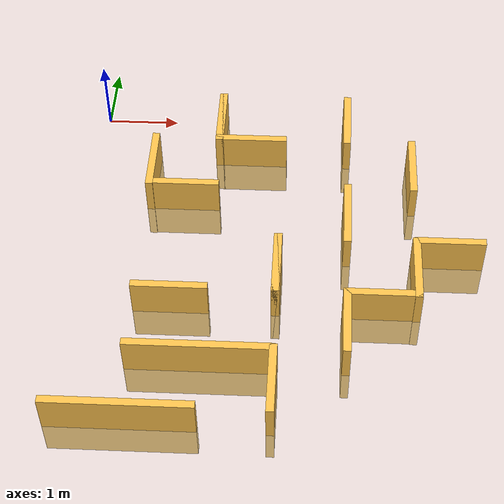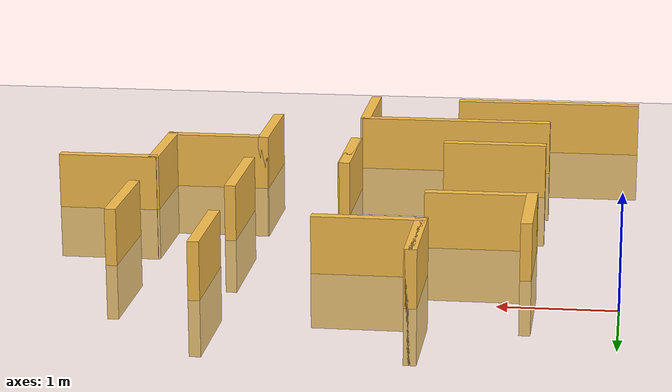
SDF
<sdf version="1.7">
 <world name="default">
  <model name="ground_plane">
   <static>1</static>
   <link name="link">
    <collision name="collision">
     <geometry><plane><normal>0 0 1</normal><size>100 100</size></plane></geometry>
     <surface><friction><ode><mu>100</mu><mu2>50</mu2></ode></friction></surface>
    </collision>
    <visual name="visual">
     <cast_shadows>0</cast_shadows>
     <geometry><plane><normal>0 0 1</normal><size>100 100</size></plane></geometry>
     <material>
      <script><uri>file://media/materials/scripts/gazebo.material</uri><name>Gazebo/Grey</name></script>
     </material>
    </visual>
   </link>
  </model>
  <model name="maze_train">
   <link name="Wall_19">
    <visual name="Wall_19_Visual">
     <pose>0.8 1.245 0 0 -0 0</pose>
     <geometry><box><size>0.1 0.99 1</size></box></geometry>
     <material>
      <script><uri>file://media/materials/scripts/gazebo.material</uri><name>Gazebo/Grey</name></script>
      <ambient>1 0.764706 0.305882 1</ambient>
      <diffuse>0.7 0.7 0.7 1</diffuse>
      <specular>0.01 0.01 0.01 1</specular>
      <emissive>0 0 0 1</emissive>
      <shader type="pixel"/>
     </material>
    </visual>
    <collision name="Wall_19_Collision">
     <pose>0.8 1.245 0 0 -0 0</pose>
     <geometry><box><size>0.1 0.99 1</size></box></geometry>
     <surface>
      <friction><ode><mu>1</mu><mu2>1</mu2><fdir1>0 0 0</fdir1><slip1>0</slip1><slip2>0</slip2></ode></friction>
      <bounce><restitution_coefficient>0</restitution_coefficient><threshold>1e+06</threshold></bounce>
      <contact>
       <collide_without_contact>0</collide_without_contact>
       <collide_without_contact_bitmask>1</collide_without_contact_bitmask>
       <collide_bitmask>1</collide_bitmask>
       <ode>
        <soft_cfm>0</soft_cfm>
        <soft_erp>0.2</soft_erp>
        <kp>1e+13</kp>
        <kd>1</kd>
        <max_vel>0.01</max_vel>
        <min_depth>0</min_depth>
       </ode>
       <bullet>
        <split_impulse>1</split_impulse>
        <split_impulse_penetration_threshold>-0.01</split_impulse_penetration_threshold>
        <soft_cfm>0</soft_cfm>
        <soft_erp>0.2</soft_erp>
        <kp>1e+13</kp>
        <kd>1</kd>
       </bullet>
      </contact>
     </surface>
    </collision>
   </link>
   <link name="Wall_20">
    <visual name="Wall_20_Visual">
     <pose>2.59 3.055 0 0 -0 0</pose>
     <geometry><box><size>0.1 0.97 1</size></box></geometry>
     <material>
      <script><uri>file://media/materials/scripts/gazebo.material</uri><name>Gazebo/Grey</name></script>
      <ambient>1 0.764706 0.305882 1</ambient>
      <diffuse>0.7 0.7 0.7 1</diffuse>
      <specular>0.01 0.01 0.01 1</specular>
      <emissive>0 0 0 1</emissive>
      <shader type="pixel"/>
     </material>
    </visual>
    <collision name="Wall_20_Collision">
     <pose>2.59 3.055 0 0 -0 0</pose>
     <geometry><box><size>0.1 0.97 1</size></box></geometry>
     <surface>
      <friction><ode><mu>1</mu><mu2>1</mu2><fdir1>0 0 0</fdir1><slip1>0</slip1><slip2>0</slip2></ode></friction>
      <bounce><restitution_coefficient>0</restitution_coefficient><threshold>1e+06</threshold></bounce>
      <contact>
       <collide_without_contact>0</collide_without_contact>
       <collide_without_contact_bitmask>1</collide_without_contact_bitmask>
       <collide_bitmask>1</collide_bitmask>
       <ode>
        <soft_cfm>0</soft_cfm>
        <soft_erp>0.2</soft_erp>
        <kp>1e+13</kp>
        <kd>1</kd>
        <max_vel>0.01</max_vel>
        <min_depth>0</min_depth>
       </ode>
       <bullet>
        <split_impulse>1</split_impulse>
        <split_impulse_penetration_threshold>-0.01</split_impulse_penetration_threshold>
        <soft_cfm>0</soft_cfm>
        <soft_erp>0.2</soft_erp>
        <kp>1e+13</kp>
        <kd>1</kd>
       </bullet>
      </contact>
     </surface>
    </collision>
   </link>
   <link name="Wall_21">
    <visual name="Wall_21_Visual">
     <pose>4.39 1.24 0 0 -0 0</pose>
     <geometry><box><size>0.1 0.96 1</size></box></geometry>
     <material>
      <script><uri>file://media/materials/scripts/gazebo.material</uri><name>Gazebo/Grey</name></script>
      <ambient>1 0.764706 0.305882 1</ambient>
      <diffuse>0.7 0.7 0.7 1</diffuse>
      <specular>0.01 0.01 0.01 1</specular>
      <emissive>0 0 0 1</emissive>
      <shader type="pixel"/>
     </material>
    </visual>
    <collision name="Wall_21_Collision">
     <pose>4.39 1.24 0 0 -0 0</pose>
     <geometry><box><size>0.1 0.96 1</size></box></geometry>
     <surface>
      <friction><ode><mu>1</mu><mu2>1</mu2><fdir1>0 0 0</fdir1><slip1>0</slip1><slip2>0</slip2></ode></friction>
      <bounce><restitution_coefficient>0</restitution_coefficient><threshold>1e+06</threshold></bounce>
      <contact>
       <collide_without_contact>0</collide_without_contact>
       <collide_without_contact_bitmask>1</collide_without_contact_bitmask>
       <collide_bitmask>1</collide_bitmask>
       <ode>
        <soft_cfm>0</soft_cfm>
        <soft_erp>0.2</soft_erp>
        <kp>1e+13</kp>
        <kd>1</kd>
        <max_vel>0.01</max_vel>
        <min_depth>0</min_depth>
       </ode>
       <bullet>
        <split_impulse>1</split_impulse>
        <split_impulse_penetration_threshold>-0.01</split_impulse_penetration_threshold>
        <soft_cfm>0</soft_cfm>
        <soft_erp>0.2</soft_erp>
        <kp>1e+13</kp>
        <kd>1</kd>
       </bullet>
      </contact>
     </surface>
    </collision>
   </link>
   <link name="Wall_22">
    <visual name="Wall_22_Visual">
     <pose>3.95 3.5 0 0 -0 0</pose>
     <geometry><box><size>0.98 0.1 1</size></box></geometry>
     <material>
      <script><uri>file://media/materials/scripts/gazebo.material</uri><name>Gazebo/Grey</name></script>
      <ambient>1 0.764706 0.305882 1</ambient>
      <diffuse>0.7 0.7 0.7 1</diffuse>
      <specular>0.01 0.01 0.01 1</specular>
      <emissive>0 0 0 1</emissive>
      <shader type="pixel"/>
     </material>
    </visual>
    <collision name="Wall_22_Collision">
     <pose>3.95 3.5 0 0 -0 0</pose>
     <geometry><box><size>0.98 0.1 1</size></box></geometry>
     <surface>
      <friction><ode><mu>1</mu><mu2>1</mu2><fdir1>0 0 0</fdir1><slip1>0</slip1><slip2>0</slip2></ode></friction>
      <bounce><restitution_coefficient>0</restitution_coefficient><threshold>1e+06</threshold></bounce>
      <contact>
       <collide_without_contact>0</collide_without_contact>
       <collide_without_contact_bitmask>1</collide_without_contact_bitmask>
       <collide_bitmask>1</collide_bitmask>
       <ode>
        <soft_cfm>0</soft_cfm>
        <soft_erp>0.2</soft_erp>
        <kp>1e+13</kp>
        <kd>1</kd>
        <max_vel>0.01</max_vel>
        <min_depth>0</min_depth>
       </ode>
       <bullet>
        <split_impulse>1</split_impulse>
        <split_impulse_penetration_threshold>-0.01</split_impulse_penetration_threshold>
        <soft_cfm>0</soft_cfm>
        <soft_erp>0.2</soft_erp>
        <kp>1e+13</kp>
        <kd>1</kd>
       </bullet>
      </contact>
     </surface>
    </collision>
   </link>
   <link name="Wall_23">
    <visual name="Wall_23_Visual">
     <pose>1.25 3.49 0 0 -0 0</pose>
     <geometry><box><size>0.98 0.1 1</size></box></geometry>
     <material>
      <script><uri>file://media/materials/scripts/gazebo.material</uri><name>Gazebo/Grey</name></script>
      <ambient>1 0.764706 0.305882 1</ambient>
      <diffuse>0.7 0.7 0.7 1</diffuse>
      <specular>0.01 0.01 0.01 1</specular>
      <emissive>0 0 0 1</emissive>
      <shader type="pixel"/>
     </material>
    </visual>
    <collision name="Wall_23_Collision">
     <pose>1.25 3.49 0 0 -0 0</pose>
     <geometry><box><size>0.98 0.1 1</size></box></geometry>
     <surface>
      <friction><ode><mu>1</mu><mu2>1</mu2><fdir1>0 0 0</fdir1><slip1>0</slip1><slip2>0</slip2></ode></friction>
      <bounce><restitution_coefficient>0</restitution_coefficient><threshold>1e+06</threshold></bounce>
      <contact>
       <collide_without_contact>0</collide_without_contact>
       <collide_without_contact_bitmask>1</collide_without_contact_bitmask>
       <collide_bitmask>1</collide_bitmask>
       <ode>
        <soft_cfm>0</soft_cfm>
        <soft_erp>0.2</soft_erp>
        <kp>1e+13</kp>
        <kd>1</kd>
        <max_vel>0.01</max_vel>
        <min_depth>0</min_depth>
       </ode>
       <bullet>
        <split_impulse>1</split_impulse>
        <split_impulse_penetration_threshold>-0.01</split_impulse_penetration_threshold>
        <soft_cfm>0</soft_cfm>
        <soft_erp>0.2</soft_erp>
        <kp>1e+13</kp>
        <kd>1</kd>
       </bullet>
      </contact>
     </surface>
    </collision>
   </link>
   <link name="Wall_24">
    <visual name="Wall_24_Visual">
     <pose>2.145 0.79 0 0 -0 0</pose>
     <geometry><box><size>0.99 0.1 1</size></box></geometry>
     <material>
      <script><uri>file://media/materials/scripts/gazebo.material</uri><name>Gazebo/Grey</name></script>
      <ambient>1 0.764706 0.305882 1</ambient>
      <diffuse>0.7 0.7 0.7 1</diffuse>
      <specular>0.01 0.01 0.01 1</specular>
      <emissive>0 0 0 1</emissive>
      <shader type="pixel"/>
     </material>
    </visual>
    <collision name="Wall_24_Collision">
     <pose>2.145 0.79 0 0 -0 0</pose>
     <geometry><box><size>0.99 0.1 1</size></box></geometry>
     <surface>
      <friction><ode><mu>1</mu><mu2>1</mu2><fdir1>0 0 0</fdir1><slip1>0</slip1><slip2>0</slip2></ode></friction>
      <bounce><restitution_coefficient>0</restitution_coefficient><threshold>1e+06</threshold></bounce>
      <contact>
       <collide_without_contact>0</collide_without_contact>
       <collide_without_contact_bitmask>1</collide_without_contact_bitmask>
       <collide_bitmask>1</collide_bitmask>
       <ode>
        <soft_cfm>0</soft_cfm>
        <soft_erp>0.2</soft_erp>
        <kp>1e+13</kp>
        <kd>1</kd>
        <max_vel>0.01</max_vel>
        <min_depth>0</min_depth>
       </ode>
       <bullet>
        <split_impulse>1</split_impulse>
        <split_impulse_penetration_threshold>-0.01</split_impulse_penetration_threshold>
        <soft_cfm>0</soft_cfm>
        <soft_erp>0.2</soft_erp>
        <kp>1e+13</kp>
        <kd>1</kd>
       </bullet>
      </contact>
     </surface>
    </collision>
   </link>
   <link name="Wall_25">
    <visual name="Wall_25_Visual">
     <pose>2.6 3.055 0 0 -0 0</pose>
     <geometry><box><size>0.1 0.97 1</size></box></geometry>
     <material>
      <script><uri>file://media/materials/scripts/gazebo.material</uri><name>Gazebo/Grey</name></script>
      <ambient>1 0.764706 0.305882 1</ambient>
      <diffuse>0.7 0.7 0.7 1</diffuse>
      <specular>0.01 0.01 0.01 1</specular>
      <emissive>0 0 0 1</emissive>
      <shader type="pixel"/>
     </material>
    </visual>
    <collision name="Wall_25_Collision">
     <pose>2.6 3.055 0 0 -0 0</pose>
     <geometry><box><size>0.1 0.97 1</size></box></geometry>
     <surface>
      <friction><ode><mu>1</mu><mu2>1</mu2><fdir1>0 0 0</fdir1><slip1>0</slip1><slip2>0</slip2></ode></friction>
      <bounce><restitution_coefficient>0</restitution_coefficient><threshold>1e+06</threshold></bounce>
      <contact>
       <collide_without_contact>0</collide_without_contact>
       <collide_without_contact_bitmask>1</collide_without_contact_bitmask>
       <collide_bitmask>1</collide_bitmask>
       <ode>
        <soft_cfm>0</soft_cfm>
        <soft_erp>0.2</soft_erp>
        <kp>1e+13</kp>
        <kd>1</kd>
        <max_vel>0.01</max_vel>
        <min_depth>0</min_depth>
       </ode>
       <bullet>
        <split_impulse>1</split_impulse>
        <split_impulse_penetration_threshold>-0.01</split_impulse_penetration_threshold>
        <soft_cfm>0</soft_cfm>
        <soft_erp>0.2</soft_erp>
        <kp>1e+13</kp>
        <kd>1</kd>
       </bullet>
      </contact>
     </surface>
    </collision>
   </link>
   <link name="Wall_27">
    <visual name="Wall_27_Visual">
     <pose>3.5 3.94 0 0 -0 0</pose>
     <geometry><box><size>0.1 0.98 1</size></box></geometry>
     <material>
      <script><uri>file://media/materials/scripts/gazebo.material</uri><name>Gazebo/Grey</name></script>
      <ambient>1 0.764706 0.305882 1</ambient>
      <diffuse>0.7 0.7 0.7 1</diffuse>
      <specular>0.01 0.01 0.01 1</specular>
      <emissive>0 0 0 1</emissive>
      <shader type="pixel"/>
     </material>
    </visual>
    <collision name="Wall_27_Collision">
     <pose>3.5 3.94 0 0 -0 0</pose>
     <geometry><box><size>0.1 0.98 1</size></box></geometry>
     <surface>
      <friction><ode><mu>1</mu><mu2>1</mu2><fdir1>0 0 0</fdir1><slip1>0</slip1><slip2>0</slip2></ode></friction>
      <bounce><restitution_coefficient>0</restitution_coefficient><threshold>1e+06</threshold></bounce>
      <contact>
       <collide_without_contact>0</collide_without_contact>
       <collide_without_contact_bitmask>1</collide_without_contact_bitmask>
       <collide_bitmask>1</collide_bitmask>
       <ode>
        <soft_cfm>0</soft_cfm>
        <soft_erp>0.2</soft_erp>
        <kp>1e+13</kp>
        <kd>1</kd>
        <max_vel>0.01</max_vel>
        <min_depth>0</min_depth>
       </ode>
       <bullet>
        <split_impulse>1</split_impulse>
        <split_impulse_penetration_threshold>-0.01</split_impulse_penetration_threshold>
        <soft_cfm>0</soft_cfm>
        <soft_erp>0.2</soft_erp>
        <kp>1e+13</kp>
        <kd>1</kd>
       </bullet>
      </contact>
     </surface>
    </collision>
   </link>
   <link name="Wall_28">
    <visual name="Wall_28_Visual">
     <pose>1.7 4.4 0 0 -0 0</pose>
     <geometry><box><size>1.88 0.1 1</size></box></geometry>
     <material>
      <script><uri>file://media/materials/scripts/gazebo.material</uri><name>Gazebo/Grey</name></script>
      <ambient>1 0.764706 0.305882 1</ambient>
      <diffuse>0.7 0.7 0.7 1</diffuse>
      <specular>0.01 0.01 0.01 1</specular>
      <emissive>0 0 0 1</emissive>
      <shader type="pixel"/>
     </material>
    </visual>
    <collision name="Wall_28_Collision">
     <pose>1.7 4.4 0 0 -0 0</pose>
     <geometry><box><size>1.88 0.1 1</size></box></geometry>
     <surface>
      <friction><ode><mu>1</mu><mu2>1</mu2><fdir1>0 0 0</fdir1><slip1>0</slip1><slip2>0</slip2></ode></friction>
      <bounce><restitution_coefficient>0</restitution_coefficient><threshold>1e+06</threshold></bounce>
      <contact>
       <collide_without_contact>0</collide_without_contact>
       <collide_without_contact_bitmask>1</collide_without_contact_bitmask>
       <collide_bitmask>1</collide_bitmask>
       <ode>
        <soft_cfm>0</soft_cfm>
        <soft_erp>0.2</soft_erp>
        <kp>1e+13</kp>
        <kd>1</kd>
        <max_vel>0.01</max_vel>
        <min_depth>0</min_depth>
       </ode>
       <bullet>
        <split_impulse>1</split_impulse>
        <split_impulse_penetration_threshold>-0.01</split_impulse_penetration_threshold>
        <soft_cfm>0</soft_cfm>
        <soft_erp>0.2</soft_erp>
        <kp>1e+13</kp>
        <kd>1</kd>
       </bullet>
      </contact>
     </surface>
    </collision>
   </link>
   <link name="Wall_29">
    <visual name="Wall_29_Visual">
     <pose>3.49 0.36 0 0 -0 0</pose>
     <geometry><box><size>0.1 0.96 1</size></box></geometry>
     <material>
      <script><uri>file://media/materials/scripts/gazebo.material</uri><name>Gazebo/Grey</name></script>
      <ambient>1 0.764706 0.305882 1</ambient>
      <diffuse>0.7 0.7 0.7 1</diffuse>
      <specular>0.01 0.01 0.01 1</specular>
      <emissive>0 0 0 1</emissive>
      <shader type="pixel"/>
     </material>
    </visual>
    <collision name="Wall_29_Collision">
     <pose>3.49 0.36 0 0 -0 0</pose>
     <geometry><box><size>0.1 0.96 1</size></box></geometry>
     <surface>
      <friction><ode><mu>1</mu><mu2>1</mu2><fdir1>0 0 0</fdir1><slip1>0</slip1><slip2>0</slip2></ode></friction>
      <bounce><restitution_coefficient>0</restitution_coefficient><threshold>1e+06</threshold></bounce>
      <contact>
       <collide_without_contact>0</collide_without_contact>
       <collide_without_contact_bitmask>1</collide_without_contact_bitmask>
       <collide_bitmask>1</collide_bitmask>
       <ode>
        <soft_cfm>0</soft_cfm>
        <soft_erp>0.2</soft_erp>
        <kp>1e+13</kp>
        <kd>1</kd>
        <max_vel>0.01</max_vel>
        <min_depth>0</min_depth>
       </ode>
       <bullet>
        <split_impulse>1</split_impulse>
        <split_impulse_penetration_threshold>-0.01</split_impulse_penetration_threshold>
        <soft_cfm>0</soft_cfm>
        <soft_erp>0.2</soft_erp>
        <kp>1e+13</kp>
        <kd>1</kd>
       </bullet>
      </contact>
     </surface>
    </collision>
   </link>
   <link name="Wall_34">
    <visual name="Wall_34_Visual">
     <pose>1.7 0.36 0 0 -0 0</pose>
     <geometry><box><size>0.1 0.96 1</size></box></geometry>
     <material>
      <script><uri>file://media/materials/scripts/gazebo.material</uri><name>Gazebo/Grey</name></script>
      <ambient>1 0.764706 0.305882 1</ambient>
      <diffuse>0.7 0.7 0.7 1</diffuse>
      <specular>0.01 0.01 0.01 1</specular>
      <emissive>0 0 0 1</emissive>
      <shader type="pixel"/>
     </material>
    </visual>
    <collision name="Wall_34_Collision">
     <pose>1.7 0.36 0 0 -0 0</pose>
     <geometry><box><size>0.1 0.96 1</size></box></geometry>
     <surface>
      <friction><ode><mu>1</mu><mu2>1</mu2><fdir1>0 0 0</fdir1><slip1>0</slip1><slip2>0</slip2></ode></friction>
      <bounce><restitution_coefficient>0</restitution_coefficient><threshold>1e+06</threshold></bounce>
      <contact>
       <collide_without_contact>0</collide_without_contact>
       <collide_without_contact_bitmask>1</collide_without_contact_bitmask>
       <collide_bitmask>1</collide_bitmask>
       <ode>
        <soft_cfm>0</soft_cfm>
        <soft_erp>0.2</soft_erp>
        <kp>1e+13</kp>
        <kd>1</kd>
        <max_vel>0.01</max_vel>
        <min_depth>0</min_depth>
       </ode>
       <bullet>
        <split_impulse>1</split_impulse>
        <split_impulse_penetration_threshold>-0.01</split_impulse_penetration_threshold>
        <soft_cfm>0</soft_cfm>
        <soft_erp>0.2</soft_erp>
        <kp>1e+13</kp>
        <kd>1</kd>
       </bullet>
      </contact>
     </surface>
    </collision>
   </link>
   <link name="Wall_36">
    <visual name="Wall_36_Visual">
     <pose>1.69 0.36 0 0 -0 0</pose>
     <geometry><box><size>0.1 0.96 1</size></box></geometry>
     <material>
      <script><uri>file://media/materials/scripts/gazebo.material</uri><name>Gazebo/Grey</name></script>
      <ambient>1 0.764706 0.305882 1</ambient>
      <diffuse>0.7 0.7 0.7 1</diffuse>
      <specular>0.01 0.01 0.01 1</specular>
      <emissive>0 0 0 1</emissive>
      <shader type="pixel"/>
     </material>
    </visual>
    <collision name="Wall_36_Collision">
     <pose>1.69 0.36 0 0 -0 0</pose>
     <geometry><box><size>0.1 0.96 1</size></box></geometry>
     <surface>
      <friction><ode><mu>1</mu><mu2>1</mu2><fdir1>0 0 0</fdir1><slip1>0</slip1><slip2>0</slip2></ode></friction>
      <bounce><restitution_coefficient>0</restitution_coefficient><threshold>1e+06</threshold></bounce>
      <contact>
       <collide_without_contact>0</collide_without_contact>
       <collide_without_contact_bitmask>1</collide_without_contact_bitmask>
       <collide_bitmask>1</collide_bitmask>
       <ode>
        <soft_cfm>0</soft_cfm>
        <soft_erp>0.2</soft_erp>
        <kp>1e+13</kp>
        <kd>1</kd>
        <max_vel>0.01</max_vel>
        <min_depth>0</min_depth>
       </ode>
       <bullet>
        <split_impulse>1</split_impulse>
        <split_impulse_penetration_threshold>-0.01</split_impulse_penetration_threshold>
        <soft_cfm>0</soft_cfm>
        <soft_erp>0.2</soft_erp>
        <kp>1e+13</kp>
        <kd>1</kd>
       </bullet>
      </contact>
     </surface>
    </collision>
   </link>
   <link name="Wall_37">
    <visual name="Wall_37_Visual">
     <pose>0.815 5.27 0 0 -0 0</pose>
     <geometry><box><size>1.85 0.1 1</size></box></geometry>
     <material>
      <script><uri>file://media/materials/scripts/gazebo.material</uri><name>Gazebo/Grey</name></script>
      <ambient>1 0.764706 0.305882 1</ambient>
      <diffuse>0.7 0.7 0.7 1</diffuse>
      <specular>0.01 0.01 0.01 1</specular>
      <emissive>0 0 0 1</emissive>
      <shader type="pixel"/>
     </material>
    </visual>
    <collision name="Wall_37_Collision">
     <pose>0.815 5.27 0 0 -0 0</pose>
     <geometry><box><size>1.85 0.1 1</size></box></geometry>
     <surface>
      <friction><ode><mu>1</mu><mu2>1</mu2><fdir1>0 0 0</fdir1><slip1>0</slip1><slip2>0</slip2></ode></friction>
      <bounce><restitution_coefficient>0</restitution_coefficient><threshold>1e+06</threshold></bounce>
      <contact>
       <collide_without_contact>0</collide_without_contact>
       <collide_without_contact_bitmask>1</collide_without_contact_bitmask>
       <collide_bitmask>1</collide_bitmask>
       <ode>
        <soft_cfm>0</soft_cfm>
        <soft_erp>0.2</soft_erp>
        <kp>1e+13</kp>
        <kd>1</kd>
        <max_vel>0.01</max_vel>
        <min_depth>0</min_depth>
       </ode>
       <bullet>
        <split_impulse>1</split_impulse>
        <split_impulse_penetration_threshold>-0.01</split_impulse_penetration_threshold>
        <soft_cfm>0</soft_cfm>
        <soft_erp>0.2</soft_erp>
        <kp>1e+13</kp>
        <kd>1</kd>
       </bullet>
      </contact>
     </surface>
    </collision>
   </link>
   <link name="Wall_38">
    <visual name="Wall_38_Visual">
     <pose>2.61 4.845 0 0 -0 0</pose>
     <geometry><box><size>0.1 0.97 1</size></box></geometry>
     <material>
      <script><uri>file://media/materials/scripts/gazebo.material</uri><name>Gazebo/Grey</name></script>
      <ambient>1 0.764706 0.305882 1</ambient>
      <diffuse>0.7 0.7 0.7 1</diffuse>
      <specular>0.01 0.01 0.01 1</specular>
      <emissive>0 0 0 1</emissive>
      <shader type="pixel"/>
     </material>
    </visual>
    <collision name="Wall_38_Collision">
     <pose>2.61 4.845 0 0 -0 0</pose>
     <geometry><box><size>0.1 0.97 1</size></box></geometry>
     <surface>
      <friction><ode><mu>1</mu><mu2>1</mu2><fdir1>0 0 0</fdir1><slip1>0</slip1><slip2>0</slip2></ode></friction>
      <bounce><restitution_coefficient>0</restitution_coefficient><threshold>1e+06</threshold></bounce>
      <contact>
       <collide_without_contact>0</collide_without_contact>
       <collide_without_contact_bitmask>1</collide_without_contact_bitmask>
       <collide_bitmask>1</collide_bitmask>
       <ode>
        <soft_cfm>0</soft_cfm>
        <soft_erp>0.2</soft_erp>
        <kp>1e+13</kp>
        <kd>1</kd>
        <max_vel>0.01</max_vel>
        <min_depth>0</min_depth>
       </ode>
       <bullet>
        <split_impulse>1</split_impulse>
        <split_impulse_penetration_threshold>-0.01</split_impulse_penetration_threshold>
        <soft_cfm>0</soft_cfm>
        <soft_erp>0.2</soft_erp>
        <kp>1e+13</kp>
        <kd>1</kd>
       </bullet>
      </contact>
     </surface>
    </collision>
   </link>
   <link name="Wall_39">
    <visual name="Wall_39_Visual">
     <pose>4.4 3.065 0 0 -0 0</pose>
     <geometry><box><size>0.1 0.99 1</size></box></geometry>
     <material>
      <script><uri>file://media/materials/scripts/gazebo.material</uri><name>Gazebo/Grey</name></script>
      <ambient>1 0.764706 0.305882 1</ambient>
      <diffuse>0.7 0.7 0.7 1</diffuse>
      <specular>0.01 0.01 0.01 1</specular>
      <emissive>0 0 0 1</emissive>
      <shader type="pixel"/>
     </material>
    </visual>
    <collision name="Wall_39_Collision">
     <pose>4.4 3.065 0 0 -0 0</pose>
     <geometry><box><size>0.1 0.99 1</size></box></geometry>
     <surface>
      <friction><ode><mu>1</mu><mu2>1</mu2><fdir1>0 0 0</fdir1><slip1>0</slip1><slip2>0</slip2></ode></friction>
      <bounce><restitution_coefficient>0</restitution_coefficient><threshold>1e+06</threshold></bounce>
      <contact>
       <collide_without_contact>0</collide_without_contact>
       <collide_without_contact_bitmask>1</collide_without_contact_bitmask>
       <collide_bitmask>1</collide_bitmask>
       <ode>
        <soft_cfm>0</soft_cfm>
        <soft_erp>0.2</soft_erp>
        <kp>1e+13</kp>
        <kd>1</kd>
        <max_vel>0.01</max_vel>
        <min_depth>0</min_depth>
       </ode>
       <bullet>
        <split_impulse>1</split_impulse>
        <split_impulse_penetration_threshold>-0.01</split_impulse_penetration_threshold>
        <soft_cfm>0</soft_cfm>
        <soft_erp>0.2</soft_erp>
        <kp>1e+13</kp>
        <kd>1</kd>
       </bullet>
      </contact>
     </surface>
    </collision>
   </link>
   <link name="Wall_40">
    <visual name="Wall_40_Visual">
     <pose>4.835 2.61 0 0 -0 0</pose>
     <geometry><box><size>0.93 0.1 1</size></box></geometry>
     <material>
      <script><uri>file://media/materials/scripts/gazebo.material</uri><name>Gazebo/Grey</name></script>
      <ambient>1 0.764706 0.305882 1</ambient>
      <diffuse>0.7 0.7 0.7 1</diffuse>
      <specular>0.01 0.01 0.01 1</specular>
      <emissive>0 0 0 1</emissive>
      <shader type="pixel"/>
     </material>
    </visual>
    <collision name="Wall_40_Collision">
     <pose>4.835 2.61 0 0 -0 0</pose>
     <geometry><box><size>0.93 0.1 1</size></box></geometry>
     <surface>
      <friction><ode><mu>1</mu><mu2>1</mu2><fdir1>0 0 0</fdir1><slip1>0</slip1><slip2>0</slip2></ode></friction>
      <bounce><restitution_coefficient>0</restitution_coefficient><threshold>1e+06</threshold></bounce>
      <contact>
       <collide_without_contact>0</collide_without_contact>
       <collide_without_contact_bitmask>1</collide_without_contact_bitmask>
       <collide_bitmask>1</collide_bitmask>
       <ode>
        <soft_cfm>0</soft_cfm>
        <soft_erp>0.2</soft_erp>
        <kp>1e+13</kp>
        <kd>1</kd>
        <max_vel>0.01</max_vel>
        <min_depth>0</min_depth>
       </ode>
       <bullet>
        <split_impulse>1</split_impulse>
        <split_impulse_penetration_threshold>-0.01</split_impulse_penetration_threshold>
        <soft_cfm>0</soft_cfm>
        <soft_erp>0.2</soft_erp>
        <kp>1e+13</kp>
        <kd>1</kd>
       </bullet>
      </contact>
     </surface>
    </collision>
   </link>
   <link name="Wall_41">
    <visual name="Wall_41_Visual">
     <pose>3.5 2.155 0 0 -0 0</pose>
     <geometry><box><size>0.1 1.03 1</size></box></geometry>
     <material>
      <script><uri>file://media/materials/scripts/gazebo.material</uri><name>Gazebo/Grey</name></script>
      <ambient>1 0.764706 0.305882 1</ambient>
      <diffuse>0.7 0.7 0.7 1</diffuse>
      <specular>0.01 0.01 0.01 1</specular>
      <emissive>0 0 0 1</emissive>
      <shader type="pixel"/>
     </material>
    </visual>
    <collision name="Wall_41_Collision">
     <pose>3.5 2.155 0 0 -0 0</pose>
     <geometry><box><size>0.1 1.03 1</size></box></geometry>
     <surface>
      <friction><ode><mu>1</mu><mu2>1</mu2><fdir1>0 0 0</fdir1><slip1>0</slip1><slip2>0</slip2></ode></friction>
      <bounce><restitution_coefficient>0</restitution_coefficient><threshold>1e+06</threshold></bounce>
      <contact>
       <collide_without_contact>0</collide_without_contact>
       <collide_without_contact_bitmask>1</collide_without_contact_bitmask>
       <collide_bitmask>1</collide_bitmask>
       <ode>
        <soft_cfm>0</soft_cfm>
        <soft_erp>0.2</soft_erp>
        <kp>1e+13</kp>
        <kd>1</kd>
        <max_vel>0.01</max_vel>
        <min_depth>0</min_depth>
       </ode>
       <bullet>
        <split_impulse>1</split_impulse>
        <split_impulse_penetration_threshold>-0.01</split_impulse_penetration_threshold>
        <soft_cfm>0</soft_cfm>
        <soft_erp>0.2</soft_erp>
        <kp>1e+13</kp>
        <kd>1</kd>
       </bullet>
      </contact>
     </surface>
    </collision>
   </link>
   <link name="Wall_42">
    <visual name="Wall_42_Visual">
     <pose>1.25 1.68 0 0 -0 0</pose>
     <geometry><box><size>1 0.1 1</size></box></geometry>
     <material>
      <script><uri>file://media/materials/scripts/gazebo.material</uri><name>Gazebo/Grey</name></script>
      <ambient>1 0.764706 0.305882 1</ambient>
      <diffuse>0.7 0.7 0.7 1</diffuse>
      <specular>0.01 0.01 0.01 1</specular>
      <emissive>0 0 0 1</emissive>
      <shader type="pixel"/>
     </material>
    </visual>
    <collision name="Wall_42_Collision">
     <pose>1.25 1.68 0 0 -0 0</pose>
     <geometry><box><size>1 0.1 1</size></box></geometry>
     <surface>
      <friction><ode><mu>1</mu><mu2>1</mu2><fdir1>0 0 0</fdir1><slip1>0</slip1><slip2>0</slip2></ode></friction>
      <bounce><restitution_coefficient>0</restitution_coefficient><threshold>1e+06</threshold></bounce>
      <contact>
       <collide_without_contact>0</collide_without_contact>
       <collide_without_contact_bitmask>1</collide_without_contact_bitmask>
       <collide_bitmask>1</collide_bitmask>
       <ode>
        <soft_cfm>0</soft_cfm>
        <soft_erp>0.2</soft_erp>
        <kp>1e+13</kp>
        <kd>1</kd>
        <max_vel>0.01</max_vel>
        <min_depth>0</min_depth>
       </ode>
       <bullet>
        <split_impulse>1</split_impulse>
        <split_impulse_penetration_threshold>-0.01</split_impulse_penetration_threshold>
        <soft_cfm>0</soft_cfm>
        <soft_erp>0.2</soft_erp>
        <kp>1e+13</kp>
        <kd>1</kd>
       </bullet>
      </contact>
     </surface>
    </collision>
   </link>
   <static>1</static>
   <pose>0 0 0 3.14 -0 0</pose>
  </model>
 </world>
</sdf>
